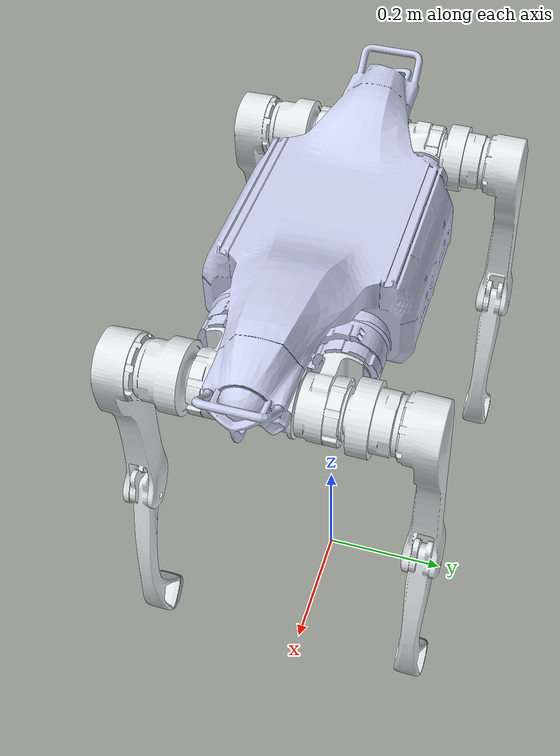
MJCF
<?xml version='1.0' encoding='utf-8'?>
<mujoco model="a2">
  <compiler angle="radian" />
  <option gravity="0 0 -9.81" />

  <default>
      <default class="hip_joint">
        <joint damping="0.2" armature="0.03" frictionloss="1.0" />
      </default>
      <default class="thigh_joint">
        <joint damping="0.2" armature="0.03" frictionloss="1.0" />
      </default>
      <default class="calf_joint">
        <joint damping="1.0" armature="0.03" frictionloss="3.0" />
      </default>
      <default class="collision">
        <geom group="3" priority="1" condim="6" contype="0" conaffinity="0" />
      </default>
      <default class="visual">
          <geom type="mesh" contype="0" conaffinity="0" group="2" />
      </default>

      <default class="foot">
          <geom group="3" priority="1" condim="6" friction="1.3 0.01 0.01" contype="0" conaffinity="0" />

      </default>
  </default>

  <asset>
    <mesh name="base_link" file="/home/gturrisi/other_ws_home/sim2real-robot-identification/robot_model/a2/meshes/base_link.STL" />
    <mesh name="left_front_Link1" file="/home/gturrisi/other_ws_home/sim2real-robot-identification/robot_model/a2/meshes/left_front_Link1.STL" />
    <mesh name="left_front_Link2" file="/home/gturrisi/other_ws_home/sim2real-robot-identification/robot_model/a2/meshes/left_front_Link2.STL" />
    <mesh name="left_front_Link3" file="/home/gturrisi/other_ws_home/sim2real-robot-identification/robot_model/a2/meshes/left_front_Link3.STL" />
    <mesh name="left_front_Link4" file="/home/gturrisi/other_ws_home/sim2real-robot-identification/robot_model/a2/meshes/left_front_Link4.STL" />
    <mesh name="left_hind_Link1" file="/home/gturrisi/other_ws_home/sim2real-robot-identification/robot_model/a2/meshes/left_hind_Link1.STL" />
    <mesh name="left_hind_Link2" file="/home/gturrisi/other_ws_home/sim2real-robot-identification/robot_model/a2/meshes/left_hind_Link2.STL" />
    <mesh name="left_hind_Link3" file="/home/gturrisi/other_ws_home/sim2real-robot-identification/robot_model/a2/meshes/left_hind_Link3.STL" />
    <mesh name="left_hind_Link4" file="/home/gturrisi/other_ws_home/sim2real-robot-identification/robot_model/a2/meshes/left_hind_Link4.STL" />
    <mesh name="right_front_Link1" file="/home/gturrisi/other_ws_home/sim2real-robot-identification/robot_model/a2/meshes/right_front_Link1.STL" />
    <mesh name="right_front_Link2" file="/home/gturrisi/other_ws_home/sim2real-robot-identification/robot_model/a2/meshes/right_front_Link2.STL" />
    <mesh name="right_front_Link3" file="/home/gturrisi/other_ws_home/sim2real-robot-identification/robot_model/a2/meshes/right_front_Link3.STL" />
    <mesh name="right_front_Link4" file="/home/gturrisi/other_ws_home/sim2real-robot-identification/robot_model/a2/meshes/right_front_Link4.STL" />
    <mesh name="right_hind_Link1" file="/home/gturrisi/other_ws_home/sim2real-robot-identification/robot_model/a2/meshes/right_hind_Link1.STL" />
    <mesh name="right_hind_Link2" file="/home/gturrisi/other_ws_home/sim2real-robot-identification/robot_model/a2/meshes/right_hind_Link2.STL" />
    <mesh name="right_hind_Link3" file="/home/gturrisi/other_ws_home/sim2real-robot-identification/robot_model/a2/meshes/right_hind_Link3.STL" />
    <mesh name="right_hind_Link4" file="/home/gturrisi/other_ws_home/sim2real-robot-identification/robot_model/a2/meshes/right_hind_Link4.STL" />
  </asset>

  <worldbody>
    <body name="base_link" pos="0 0 0.7">
      <inertial pos="0.00698259 -0.000712858 0.0128895" quat="-0.00152907 0.699583 -0.00252986 0.714546" mass="19.651" diaginertia="0.472398 0.407723 0.141627" />
      <site name="imu" pos="-0.0 0 0.0" />
      <geom class="visual" type="mesh" contype="0" conaffinity="0" group="1" density="0" rgba="0.792157 0.819608 0.933333 1" mesh="base_link" />
      <geom class="collision" size="0.12 0.14 0.085" pos="0 0 0.007" type="box" rgba="0.792157 0.819608 0.933333 1" contype="0" conaffinity="0" />
      <geom class="collision" size="0.04 0.025 0.01" pos="0.25 0 0.119" type="box" rgba="0.792157 0.819608 0.933333 1" contype="0" conaffinity="0" />
      <geom class="collision" size="0.025 0.015 0.008" pos="-0.22 0 0.119" quat="0.999888 0 -0.0149994 0" type="box" rgba="0.792157 0.819608 0.933333 1" contype="0" conaffinity="0" />
      <geom class="collision" size="0.03 0.05 0.005" pos="0.365 0 0.1" quat="0.939373 0 -0.342898 0" type="box" rgba="0.792157 0.819608 0.933333 1" contype="0" conaffinity="0" />
      <geom class="collision" size="0.0225 0.05 0.005" pos="-0.31 0 0.112" quat="0.939373 0 0.342898 0" type="box" rgba="0.792157 0.819608 0.933333 1" contype="0" conaffinity="0" />

      <body name="FL_hip" pos="0.25944 0.075113 0">
        <inertial pos="-0.0025 -0.0038 -0.0124" quat="0.66751 0.421649 0.565191 0.239168" mass="2.4300" diaginertia="0.0016644 0.00161602 0.00145995" />
        <joint name="FL_hip_joint" pos="0 0 0" axis="1 0 0" range="-1.01 1.01" actuatorfrcrange="-120 120" class="hip_joint" damping="0.2810" armature="0.0402" frictionloss="1.6834" />
        <geom class="visual" type="mesh" contype="0" conaffinity="0" group="1" density="0" rgba="0.898039 0.917647 0.929412 1" mesh="left_front_Link1" />

        <body name="FL_thigh" pos="0 0.12779 0">
          <inertial pos="-0.0109 -0.0111 -0.0739" quat="0.993045 0.11348 0.0231928 0.0211279" mass="2.3853" diaginertia="0.0293395 0.0280448 0.00383794" />
          <joint name="FL_thigh_joint" pos="0 0 0" axis="0 1 0" range="-2.34 3.15" actuatorfrcrange="-120 120" class="thigh_joint" damping="0.0322" armature="0.0583" frictionloss="1.8204" />
          <geom class="visual" type="mesh" contype="0" conaffinity="0" group="1" density="0" rgba="0.898039 0.917647 0.929412 1" mesh="left_front_Link2" />
          <geom class="collision" size="0.048 0.06" pos="0 -0.08 0" quat="0.707035 0.707179 0 0" type="capsule" rgba="0.898039 0.917647 0.929412 1" contype="0" conaffinity="0" />
          <geom class="collision" size="0.0275 0.018 0.085" pos="-0.025 0 -0.09" quat="0.999988 0 0.00499998 0" type="box" rgba="0.898039 0.917647 0.929412 1" contype="0" conaffinity="0" />
          <geom class="collision" size="0.0085 0.025 0.025" pos="-0.022 0 -0.27" quat="0.930508 0 -0.366273 0" type="box" rgba="0.898039 0.917647 0.929412 1" contype="0" conaffinity="0" />

          <body name="FL_calf" pos="0 0 -0.275">
            <inertial pos="0.0302 -0.0200 -0.1165" quat="0.706884 -0.0119077 -0.0120568 0.707127" mass="0.6105" diaginertia="0.00511119 0.00502314 0.000177746" />
            <joint name="FL_calf_joint" pos="0 0 0" axis="0 1 0" range="-2.77 -0.54" actuatorfrcrange="-180 180" class="calf_joint" damping="3.0000" armature="0.0698" frictionloss="3.0000" />
            <geom class="visual" type="mesh" contype="0" conaffinity="0" group="1" density="0" rgba="0.898039 0.917647 0.929412 1" mesh="left_front_Link3" />
            <geom class="collision" size="0.012 0.015 0.05" pos="0.018 0 -0.08" quat="0.992809 0 -0.119712 0" type="box" rgba="0.898039 0.917647 0.929412 1" contype="0" conaffinity="0" />
            <geom class="collision" size="0.011 0.015 0.04" pos="0.033 0 -0.17" quat="0.999888 0 -0.0149994 0" type="box" rgba="0.898039 0.917647 0.929412 1" contype="0" conaffinity="0" />
            <geom class="collision" size="0.01 0.018 0.03" pos="0.029 0 -0.236" quat="0.995004 0 0.0998334 0" type="box" rgba="0.898039 0.917647 0.929412 1" contype="0" conaffinity="0" />
            <geom class="collision" size="0.005 0.018 0.03" pos="0.008 0 -0.23" quat="0.942755 0 0.333487 0" type="box" rgba="0.898039 0.917647 0.929412 1" contype="0" conaffinity="0" />
            <geom pos="0 0 -0.275" quat="1 0 0 0" type="mesh" contype="0" conaffinity="0" group="1" density="0" rgba="0.698039 0.698039 0.698039 1" mesh="left_front_Link4" />

            <body name="FL_foot" pos="0.0 0 -0.275">

                <geom name="FL" class="foot" size="0.032" rgba="0.698039 0.698039 0.698039 1" mass="0.0223" contype="0" conaffinity="0" />
            </body>

          </body>
        </body>
      </body>

      <body name="FR_hip" pos="0.25944 -0.075113 0">
        <inertial pos="-0.0025 0.0038 -0.0124" quat="0.244263 0.553086 0.449878 0.657299" mass="2.4300" diaginertia="0.0016644 0.00161602 0.00145995" />
        <joint name="FR_hip_joint" pos="0 0 0" axis="1 0 0" range="-1.01 1.01" actuatorfrcrange="-120 120" class="hip_joint" damping="0.1345" armature="0.0458" frictionloss="1.8304" />
        <geom class="visual" type="mesh" contype="0" conaffinity="0" group="1" density="0" rgba="0.898039 0.917647 0.929412 1" mesh="right_front_Link1" />

        <body name="FR_thigh" pos="0 -0.12779 0">
          <inertial pos="-0.0109 0.0111 -0.0739" quat="0.993054 -0.113587 0.0234158 -0.0198545" mass="2.3853" diaginertia="0.0293395 0.0280448 0.00383794" />
          <joint name="FR_thigh_joint" pos="0 0 0" axis="0 1 0" range="-2.34 3.15" actuatorfrcrange="-120 120" class="thigh_joint" damping="0.1319" armature="0.0373" frictionloss="1.9278" />
          <geom class="visual" type="mesh" contype="0" conaffinity="0" group="1" density="0" rgba="0.898039 0.917647 0.929412 1" mesh="right_front_Link2" />
          <geom class="collision" size="0.048 0.06" pos="0 0.08 0" quat="0.707035 0.707179 0 0" type="capsule" rgba="0.898039 0.917647 0.929412 1" contype="0" conaffinity="0" />
          <geom class="collision" size="0.0275 0.018 0.085" pos="-0.025 0 -0.09" quat="0.999988 0 0.00499998 0" type="box" rgba="0.898039 0.917647 0.929412 1" contype="0" conaffinity="0" />
          <geom class="collision" size="0.0085 0.025 0.025" pos="-0.022 0 -0.27" quat="0.930508 0 -0.366273 0" type="box" rgba="0.898039 0.917647 0.929412 1" contype="0" conaffinity="0" />

          <body name="FR_calf" pos="0 0 -0.275">
            <inertial pos="0.0302 0.0200 -0.1165" quat="0.707151 -0.0120743 -0.0118903 0.706859" mass="0.6105" diaginertia="0.00511119 0.00502314 0.000177746" />
            <joint name="FR_calf_joint" pos="0 0 0" axis="0 1 0" range="-2.77 -0.54" actuatorfrcrange="-180 180" class="calf_joint" damping="3.0000" armature="0.0472" frictionloss="3.0000" />
            <geom class="visual" type="mesh" contype="0" conaffinity="0" group="1" density="0" rgba="0.898039 0.917647 0.929412 1" mesh="right_front_Link3" />
            <geom class="collision" size="0.012 0.015 0.05" pos="0.018 0 -0.08" quat="0.992809 0 -0.119712 0" type="box" rgba="0.898039 0.917647 0.929412 1" contype="0" conaffinity="0" />
            <geom class="collision" size="0.011 0.015 0.04" pos="0.033 0 -0.17" quat="0.999888 0 -0.0149994 0" type="box" rgba="0.898039 0.917647 0.929412 1" contype="0" conaffinity="0" />
            <geom class="collision" size="0.01 0.018 0.03" pos="0.029 0 -0.236" quat="0.995004 0 0.0998334 0" type="box" rgba="0.898039 0.917647 0.929412 1" contype="0" conaffinity="0" />
            <geom class="collision" size="0.005 0.018 0.03" pos="0.008 0 -0.23" quat="0.942755 0 0.333487 0" type="box" rgba="0.898039 0.917647 0.929412 1" contype="0" conaffinity="0" />
            <geom pos="0 0 -0.275" quat="1 0 0 0" type="mesh" contype="0" conaffinity="0" group="1" density="0" rgba="0.698039 0.698039 0.698039 1" mesh="right_front_Link4" />

            <body name="FR_foot" pos="0.0 0 -0.275">

                <geom name="FR" class="foot" size="0.032" rgba="0.698039 0.698039 0.698039 1" mass="0.0223" contype="0" conaffinity="0" />
            </body>

          </body>
        </body>
      </body>

      <body name="RL_hip" pos="-0.25944 0.075113 0">
        <inertial pos="0.0025 -0.0038 -0.0124" quat="0.358494 0.383537 0.580824 0.622113" mass="2.4300" diaginertia="0.0016644 0.00161602 0.00145995" />
        <joint name="RL_hip_joint" pos="0 0 0" axis="1 0 0" range="-1.01 1.01" actuatorfrcrange="-120 120" class="hip_joint" damping="0.6225" armature="0.0486" frictionloss="2.2703" />
        <geom type="mesh" contype="0" conaffinity="0" group="1" density="0" rgba="0.898039 0.917647 0.929412 1" mesh="left_hind_Link1" />

        <body name="RL_thigh" pos="0 0.12779 0">
          <inertial pos="-0.0109 -0.0111 -0.0739" quat="0.993045 0.11348 0.0231928 0.0211279" mass="2.3853" diaginertia="0.0293395 0.0280448 0.00383794" />
          <joint name="RL_thigh_joint" pos="0 0 0" axis="0 1 0" range="-1.56 3.94" actuatorfrcrange="-120 120" class="thigh_joint" damping="0.3133" armature="0.0316" frictionloss="2.0088" />
          <geom class="visual" type="mesh" contype="0" conaffinity="0" group="1" density="0" rgba="0.898039 0.917647 0.929412 1" mesh="left_hind_Link2" />
          <geom class="collision" size="0.048 0.06" pos="0 -0.08 0" quat="0.707035 0.707179 0 0" type="capsule" rgba="0.898039 0.917647 0.929412 1" contype="0" conaffinity="0" />
          <geom class="collision" size="0.0275 0.018 0.085" pos="-0.025 0 -0.09" quat="0.999988 0 0.00499998 0" type="box" rgba="0.898039 0.917647 0.929412 1" contype="0" conaffinity="0" />
          <geom class="collision" size="0.0085 0.025 0.025" pos="-0.022 0 -0.27" quat="0.930508 0 -0.366273 0" type="box" rgba="0.898039 0.917647 0.929412 1" contype="0" conaffinity="0" />

          <body name="RL_calf" pos="0 0 -0.275">
            <inertial pos="0.0302 -0.0200 -0.1165" quat="0.706884 -0.0119077 -0.0120568 0.707127" mass="0.6105" diaginertia="0.00511119 0.00502314 0.000177746" />
            <joint name="RL_calf_joint" pos="0 0 0" axis="0 1 0" range="-2.77 -0.54" actuatorfrcrange="-180 180" class="calf_joint" damping="3.0000" armature="0.0564" frictionloss="3.0000" />
            <geom class="visual" type="mesh" contype="0" conaffinity="0" group="1" density="0" rgba="0.898039 0.917647 0.929412 1" mesh="left_hind_Link3" />
            <geom class="collision" size="0.012 0.015 0.05" pos="0.018 0 -0.08" quat="0.992809 0 -0.119712 0" type="box" rgba="0.898039 0.917647 0.929412 1" contype="0" conaffinity="0" />
            <geom class="collision" size="0.011 0.015 0.04" pos="0.033 0 -0.17" quat="0.999888 0 -0.0149994 0" type="box" rgba="0.898039 0.917647 0.929412 1" contype="0" conaffinity="0" />
            <geom class="collision" size="0.01 0.018 0.03" pos="0.029 0 -0.236" quat="0.995004 0 0.0998334 0" type="box" rgba="0.898039 0.917647 0.929412 1" contype="0" conaffinity="0" />
            <geom class="collision" size="0.005 0.018 0.03" pos="0.008 0 -0.23" quat="0.942755 0 0.333487 0" type="box" rgba="0.898039 0.917647 0.929412 1" contype="0" conaffinity="0" />
            <geom pos="0 0 -0.275" quat="1 0 0 0" type="mesh" contype="0" conaffinity="0" group="1" density="0" rgba="0.698039 0.698039 0.698039 1" mesh="left_hind_Link4" />

            <body name="RL_foot" pos="0.0 0 -0.275">

                <geom name="RL" class="foot" size="0.032" rgba="0.698039 0.698039 0.698039 1" mass="0.0223" contype="0" conaffinity="0" />
            </body>

          </body>
        </body>
      </body>

      <body name="RR_hip" pos="-0.25944 -0.075113 0">
        <inertial pos="0.0025 0.0038 -0.0124" quat="0.616206 0.585144 0.36648 0.378931" mass="2.4300" diaginertia="0.0016644 0.00161602 0.00145995" />
        <joint name="RR_hip_joint" pos="0 0 0" axis="1 0 0" range="-1.01 1.01" actuatorfrcrange="-120 120" class="hip_joint" damping="0.1328" armature="0.0315" frictionloss="2.0098" />
        <geom class="visual" type="mesh" contype="0" conaffinity="0" group="1" density="0" rgba="0.898039 0.917647 0.929412 1" mesh="right_hind_Link1" />

        <body name="RR_thigh" pos="0 -0.12779 0">
          <inertial pos="-0.0109 0.0111 -0.0739" quat="0.993054 -0.113587 0.0234158 -0.0198545" mass="2.3853" diaginertia="0.0293395 0.0280448 0.00383794" />
          <joint name="RR_thigh_joint" pos="0 0 0" axis="0 1 0" range="-1.56 3.94" actuatorfrcrange="-120 120" class="thigh_joint" damping="0.0100" armature="0.0537" frictionloss="2.2516" />
          <geom class="visual" type="mesh" contype="0" conaffinity="0" group="1" density="0" rgba="0.898039 0.917647 0.929412 1" mesh="right_hind_Link2" />
          <geom class="collision" size="0.048 0.06" pos="0 0.08 0" quat="0.707035 0.707179 0 0" type="capsule" rgba="0.898039 0.917647 0.929412 1" contype="0" conaffinity="0" />
          <geom class="collision" size="0.0275 0.018 0.085" pos="-0.025 0 -0.09" quat="0.999988 0 0.00499998 0" type="box" rgba="0.898039 0.917647 0.929412 1" contype="0" conaffinity="0" />
          <geom class="collision" size="0.0085 0.025 0.025" pos="-0.022 0 -0.27" quat="0.930508 0 -0.366273 0" type="box" rgba="0.898039 0.917647 0.929412 1" contype="0" conaffinity="0" />

          <body name="RR_calf" pos="0 0 -0.275">
            <inertial pos="0.0302 0.0200 -0.1165" quat="0.707151 -0.0120743 -0.0118903 0.706859" mass="0.6105" diaginertia="0.00511119 0.00502314 0.000177746" />
            <joint name="RR_calf_joint" pos="0 0 0" axis="0 1 0" range="-2.77 -0.54" actuatorfrcrange="-180 180" class="calf_joint" damping="3.0000" armature="0.0460" frictionloss="3.0000" />
            <geom class="visual" type="mesh" contype="0" conaffinity="0" group="1" density="0" rgba="0.898039 0.917647 0.929412 1" mesh="right_hind_Link3" />
            <geom class="collision" size="0.012 0.015 0.05" pos="0.018 0 -0.08" quat="0.992809 0 -0.119712 0" type="box" rgba="0.898039 0.917647 0.929412 1" contype="0" conaffinity="0" />
            <geom class="collision" size="0.011 0.015 0.04" pos="0.033 0 -0.17" quat="0.999888 0 -0.0149994 0" type="box" rgba="0.898039 0.917647 0.929412 1" contype="0" conaffinity="0" />
            <geom class="collision" size="0.01 0.018 0.03" pos="0.029 0 -0.236" quat="0.995004 0 0.0998334 0" type="box" rgba="0.898039 0.917647 0.929412 1" contype="0" conaffinity="0" />
            <geom class="collision" size="0.005 0.018 0.03" pos="0.008 0 -0.23" quat="0.942755 0 0.333487 0" type="box" rgba="0.898039 0.917647 0.929412 1" contype="0" conaffinity="0" />
            <geom pos="0 0 -0.275" quat="1 0 0 0" type="mesh" contype="0" conaffinity="0" group="1" density="0" rgba="0.698039 0.698039 0.698039 1" mesh="right_hind_Link4" />

            <body name="RR_foot" pos="0.0 0 -0.275">

                <geom name="RR" class="foot" size="0.032" rgba="0.698039 0.698039 0.698039 1" mass="0.0223" contype="0" conaffinity="0" />
            </body>

          </body>
        </body>
      </body>

    </body>
  </worldbody>

  <actuator>
    <general joint="FL_hip_joint" gear="1" name="FL_hip" ctrlrange="-1.01 1.01" biastype="affine" gainprm="40" biasprm="0 -40 -2" /><general joint="FL_thigh_joint" gear="1" name="FL_thigh" ctrlrange="-2.34 3.15" biastype="affine" gainprm="40" biasprm="0 -40 -2" /><general joint="FL_calf_joint" gear="1" name="FL_calf" ctrlrange="-2.77 -0.54" biastype="affine" gainprm="40" biasprm="0 -40 -2" /><general joint="FR_hip_joint" gear="1" name="FR_hip" ctrlrange="-1.01 1.01" biastype="affine" gainprm="40" biasprm="0 -40 -2" /><general joint="FR_thigh_joint" gear="1" name="FR_thigh" ctrlrange="-2.34 3.15" biastype="affine" gainprm="40" biasprm="0 -40 -2" /><general joint="FR_calf_joint" gear="1" name="FR_calf" ctrlrange="-2.77 -0.54" biastype="affine" gainprm="40" biasprm="0 -40 -2" /><general joint="RL_hip_joint" gear="1" name="RL_hip" ctrlrange="-1.01 1.01" biastype="affine" gainprm="40" biasprm="0 -40 -2" /><general joint="RL_thigh_joint" gear="1" name="RL_thigh" ctrlrange="-1.56 3.94" biastype="affine" gainprm="40" biasprm="0 -40 -2" /><general joint="RL_calf_joint" gear="1" name="RL_calf" ctrlrange="-2.77 -0.54" biastype="affine" gainprm="40" biasprm="0 -40 -2" /><general joint="RR_hip_joint" gear="1" name="RR_hip" ctrlrange="-1.01 1.01" biastype="affine" gainprm="40" biasprm="0 -40 -2" /><general joint="RR_thigh_joint" gear="1" name="RR_thigh" ctrlrange="-1.56 3.94" biastype="affine" gainprm="40" biasprm="0 -40 -2" /><general joint="RR_calf_joint" gear="1" name="RR_calf" ctrlrange="-2.77 -0.54" biastype="affine" gainprm="40" biasprm="0 -40 -2" /></actuator>

  <sensor>
    <jointpos name="FL_hip_joint_pos" joint="FL_hip_joint" />
    <jointpos name="FL_thigh_joint_pos" joint="FL_thigh_joint" />
    <jointpos name="FL_calf_joint_pos" joint="FL_calf_joint" />
    <jointpos name="FR_hip_joint_pos" joint="FR_hip_joint" />
    <jointpos name="FR_thigh_joint_pos" joint="FR_thigh_joint" />
    <jointpos name="FR_calf_joint_pos" joint="FR_calf_joint" />
    <jointpos name="RL_hip_joint_pos" joint="RL_hip_joint" />
    <jointpos name="RL_thigh_joint_pos" joint="RL_thigh_joint" />
    <jointpos name="RL_calf_joint_pos" joint="RL_calf_joint" />
    <jointpos name="RR_hip_joint_pos" joint="RR_hip_joint" />
    <jointpos name="RR_thigh_joint_pos" joint="RR_thigh_joint" />
    <jointpos name="RR_calf_joint_pos" joint="RR_calf_joint" />
  </sensor>

  </mujoco>
